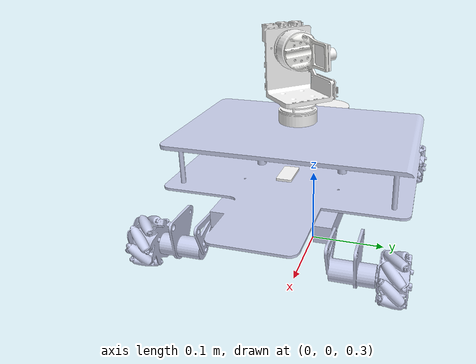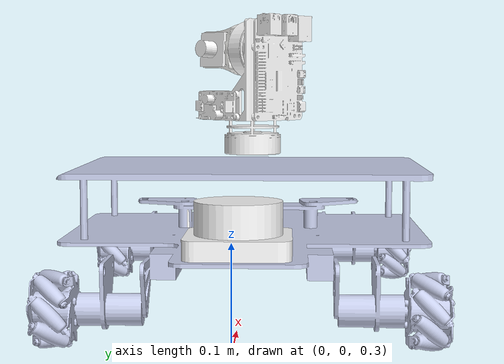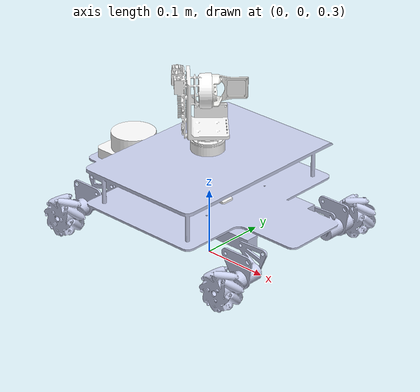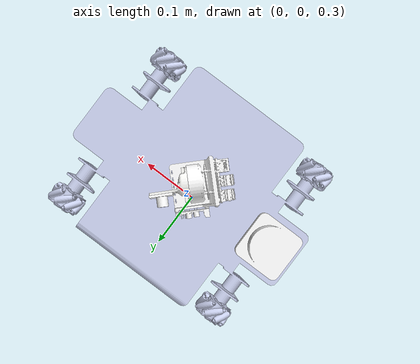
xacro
<?xml version="1.0" encoding="utf-8"?>
<robot
  name="robot2" xmlns:xacro="http://www.ros.org/wiki/xacro">
  <!-- base_footprint：机器人在地面的投影，z=0 -->
  <link name="base_footprint"/>

  <link
    name="base_link">
    <inertial>
      <origin
        xyz="0.0132167405277393 -0.0141195261419108 0.410880487047693"
        rpy="0 0 0" />
      <mass
        value="0.897679644388114" />
      <inertia
        ixx="0.00372853690958195"
        ixy="1.72105703339778E-08"
        ixz="2.42326574822141E-09"
        iyy="0.0043182244684323"
        iyz="5.80431563371861E-07"
        izz="0.00800413497461256" />
    </inertial>
    <visual>
      <origin
        xyz="0 0 0"
        rpy="0 0 0" />
      <geometry>
        <mesh
          filename="file:///home/whx/ros_sw2/src/robot2/meshes/base_link.STL" />
      </geometry>
      <material
        name="">
        <color
          rgba="0.792156862745098 0.819607843137255 0.933333333333333 1" />
      </material>
    </visual>
    <collision>
      <origin
        xyz="0 0 0"
        rpy="0 0 0" />
      <geometry>
        <mesh
          filename="file:///home/whx/ros_sw2/src/robot2/meshes/base_link.STL" />
      </geometry>
    </collision>
  </link>
  <link
    name="Wheel1_Link">
    <inertial>
      <origin
        xyz="-3.52495810318487E-15 5.05151476204446E-15 0.018499429759673"
        rpy="0 0 0" />
      <mass
        value="0.0419122672552559" />
      <inertia
        ixx="3.67888532155705E-06"
        ixy="-7.51827689923714E-21"
        ixz="-7.11157586205349E-22"
        iyy="3.67888532155703E-06"
        iyz="1.50115142513272E-22"
        izz="3.56689493889848E-06" />
    </inertial>
    <visual>
      <origin
        xyz="0 0 0"
        rpy="0 0 0" />
      <geometry>
        <mesh
          filename="file:///home/whx/ros_sw2/src/robot2/meshes/Wheel1_Link.STL" />
      </geometry>
      <material
        name="">
        <color
          rgba="0.792156862745098 0.819607843137255 0.933333333333333 1" />
      </material>
    </visual>
    <collision>
      <origin
        xyz="0 0 0"
        rpy="0 0 0" />
      <geometry>
        <mesh
          filename="file:///home/whx/ros_sw2/src/robot2/meshes/Wheel1_Link.STL" />
      </geometry>
    </collision>
  </link>
  <joint name="base_footprint_joint" type="fixed">
    <origin xyz="0 0 0.010880487047693" rpy="0 0 0"/>
    <parent link="base_footprint"/>
    <child link="base_link"/>
  </joint>

  <joint
    name="wheel_joint"
    type="continuous">
    <origin
      xyz="-0.138459353468576 -0.135012026118823 0.359075611894405"
      rpy="1.5707963267949 0 0" />
    <parent
      link="base_link" />
    <child
      link="Wheel1_Link" />
    <axis
      xyz="0 0 -1" />
  </joint>
  <link
    name="Wheel2_Link">
    <inertial>
      <origin
        xyz="-6.17214092082929E-06 -3.37571948735294E-05 0.0184842625340394"
        rpy="0 0 0" />
      <mass
        value="0.0418505141048152" />
      <inertia
        ixx="3.6785889142179E-06"
        ixy="3.58854608272818E-11"
        ixz="8.31121146724427E-11"
        iyy="3.67861691852432E-06"
        iyz="-5.6785369141978E-11"
        izz="3.56655805903672E-06" />
    </inertial>
    <visual>
      <origin
        xyz="0 0 0"
        rpy="0 0 0" />
      <geometry>
        <mesh
          filename="file:///home/whx/ros_sw2/src/robot2/meshes/Wheel2_Link.STL" />
      </geometry>
      <material
        name="">
        <color
          rgba="0.792156862745098 0.819607843137255 0.933333333333333 1" />
      </material>
    </visual>
    <collision>
      <origin
        xyz="0 0 0"
        rpy="0 0 0" />
      <geometry>
        <mesh
          filename="file:///home/whx/ros_sw2/src/robot2/meshes/Wheel2_Link.STL" />
      </geometry>
    </collision>
  </link>
  <joint
    name="wheel2_joint"
    type="continuous">
    <origin
      xyz="0.165312071284613 -0.135012026118823 0.359075611894404"
      rpy="1.5707963267949 0 0" />
    <parent
      link="base_link" />
    <child
      link="Wheel2_Link" />
    <axis
      xyz="0 0 -1" />
  </joint>
  <link
    name="Wheel3_Link">
    <inertial>
      <origin
        xyz="5.63438184997267E-15 5.55111512312578E-16 0.018500570146946"
        rpy="0 0 0" />
      <mass
        value="0.0419122672520916" />
      <inertia
        ixx="3.6788853190231E-06"
        ixy="-9.45516499373293E-21"
        ixz="-1.84560887375164E-21"
        iyy="3.6788853190231E-06"
        iyz="1.82844848648749E-21"
        izz="3.56689493673298E-06" />
    </inertial>
    <visual>
      <origin
        xyz="0 0 0"
        rpy="0 0 0" />
      <geometry>
        <mesh
          filename="file:///home/whx/ros_sw2/src/robot2/meshes/Wheel3_Link.STL" />
      </geometry>
      <material
        name="">
        <color
          rgba="0.792156862745098 0.819607843137255 0.933333333333333 1" />
      </material>
    </visual>
    <collision>
      <origin
        xyz="0 0 0"
        rpy="0 0 0" />
      <geometry>
        <mesh
          filename="file:///home/whx/ros_sw2/src/robot2/meshes/Wheel3_Link.STL" />
      </geometry>
    </collision>
  </link>
  <joint
    name="wheel3_joint"
    type="continuous">
    <origin
      xyz="0.165312071284612 0.10768225471223 0.359075611894405"
      rpy="-1.5707963267949 0 0" />
    <parent
      link="base_link" />
    <child
      link="Wheel3_Link" />
    <axis
      xyz="0 0 1" />
  </joint>
  <link
    name="Wheel4_Link">
    <inertial>
      <origin
        xyz="5.71764857681956E-15 4.9960036108132E-16 0.0185005701469439"
        rpy="0 0 0" />
      <mass
        value="0.0419122672520917" />
      <inertia
        ixx="3.67888531902311E-06"
        ixy="-9.38858567315966E-21"
        ixz="-6.71274322545044E-22"
        iyy="3.6788853190231E-06"
        iyz="9.99790655318579E-22"
        izz="3.56689493673298E-06" />
    </inertial>
    <visual>
      <origin
        xyz="0 0 0"
        rpy="0 0 0" />
      <geometry>
        <mesh
          filename="file:///home/whx/ros_sw2/src/robot2/meshes/Wheel4_Link.STL" />
      </geometry>
      <material
        name="">
        <color
          rgba="0.792156862745098 0.819607843137255 0.933333333333333 1" />
      </material>
    </visual>
    <collision>
      <origin
        xyz="0 0 0"
        rpy="0 0 0" />
      <geometry>
        <mesh
          filename="file:///home/whx/ros_sw2/src/robot2/meshes/Wheel4_Link.STL" />
      </geometry>
    </collision>
  </link>
  <joint
    name="wheel4_joint"
    type="continuous">
    <origin
      xyz="-0.138459353468577 0.107682254712233 0.359075611894405"
      rpy="-1.5707963267949 0 0" />
    <parent
      link="base_link" />
    <child
      link="Wheel4_Link" />
    <axis
      xyz="0 0 1" />
  </joint>
  <link
    name="E1_Link">
    <inertial>
      <origin
        xyz="-0.00841225933669741 -0.00679008877253193 0.0307409245395507"
        rpy="0 0 0" />
      <mass
        value="0.139375613250275" />
      <inertia
        ixx="7.15823848325997E-05"
        ixy="4.54176539885232E-06"
        ixz="7.91500459793168E-06"
        iyy="6.80386560086662E-05"
        iyz="9.31930922422236E-06"
        izz="5.08833232056672E-05" />
    </inertial>
    <visual>
      <origin
        xyz="0 0 0"
        rpy="0 0 0" />
      <geometry>
        <mesh
          filename="file:///home/whx/ros_sw2/src/robot2/meshes/E1_Link.STL" />
      </geometry>
      <material
        name="">
        <color
          rgba="1 1 1 1" />
      </material>
    </visual>
    <collision>
      <origin
        xyz="0 0 0"
        rpy="0 0 0" />
      <geometry>
        <mesh
          filename="file:///home/whx/ros_sw2/src/robot2/meshes/E1_Link.STL" />
      </geometry>
    </collision>
  </link>
  <joint
    name="E1_joint"
    type="fixed">
    <origin
      xyz="0.0134263589080169 -0.0180421531377461 0.4886"
      rpy="0 0 0" />
    <parent
      link="base_link" />
    <child
      link="E1_Link" />
    <axis
      xyz="0 0 -1" />
  </joint>
  <link
    name="E2_Link">
    <inertial>
      <origin
        xyz="0.030117911263382 0.00128519541670577 7.99053782302162E-05"
        rpy="0 0 0" />
      <mass
        value="0.00884120220950078" />
      <inertia
        ixx="2.35735580170689E-06"
        ixy="-7.15233559561298E-08"
        ixz="-4.34813534266343E-09"
        iyy="2.08142050717864E-06"
        iyz="4.68744356292E-08"
        izz="1.32377247337644E-06" />
    </inertial>
    <visual>
      <origin
        xyz="0 0 0"
        rpy="0 0 0" />
      <geometry>
        <mesh
          filename="file:///home/whx/ros_sw2/src/robot2/meshes/E2_Link.STL" />
      </geometry>
      <material
        name="">
        <color
          rgba="0.964705882352941 0.964705882352941 0.952941176470588 1" />
      </material>
    </visual>
    <collision>
      <origin
        xyz="0 0 0"
        rpy="0 0 0" />
      <geometry>
        <mesh
          filename="file:///home/whx/ros_sw2/src/robot2/meshes/E2_Link.STL" />
      </geometry>
    </collision>
  </link>
  <joint
    name="E2_joint"
    type="fixed">
    <origin
      xyz="-0.0116671243840653 -0.0116676744061118 0.0679998518154678"
      rpy="0 0 0.78539816339745" />
    <parent
      link="E1_Link" />
    <child
      link="E2_Link" />
    <axis
      xyz="1 0 0" />
  </joint>
  <link
    name="camera">
    <inertial>
      <origin
        xyz="-0.00505854242453742 6.93889390390723E-18 1.11022302462516E-16"
        rpy="0 0 0" />
      <mass
        value="0.00486326833770339" />
      <inertia
        ixx="4.62292472774214E-07"
        ixy="-2.58493941422821E-24"
        ixz="-4.81419116505862E-22"
        iyy="3.40501781846438E-07"
        iyz="3.32526606246317E-22"
        izz="3.40501781846438E-07" />
    </inertial>
    <visual>
      <origin
        xyz="0 0 0"
        rpy="0 0 0" />
      <geometry>
        <mesh
          filename="file:///home/whx/ros_sw2/src/robot2/meshes/camera.STL" />
      </geometry>
      <material
        name="">
        <color
          rgba="1 1 1 1" />
      </material>
    </visual>
    <collision>
      <origin
        xyz="0 0 0"
        rpy="0 0 0" />
      <geometry>
        <mesh
          filename="file:///home/whx/ros_sw2/src/robot2/meshes/camera.STL" />
      </geometry>
    </collision>
  </link>
  <joint
    name="camera_joint"
    type="fixed">
    <origin
      xyz="0.0579283046703796 0.00799467082773367 0.00033261724057132"
      rpy="-0.0613823921290019 0.0614983582742595 -1.57079632679482" />
    <parent
      link="E2_Link" />
    <child
      link="camera" />
    <axis
      xyz="0 0 0" />
  </joint>
  <link
    name="robot2_laser_link">
    <inertial>
      <origin
        xyz="0 -1.73472347597681E-18 0.0170480907130683"
        rpy="0 0 0" />
      <mass
        value="0.181234617293907" />
      <inertia
        ixx="9.75566164237748E-05"
        ixy="6.85008944770475E-22"
        ixz="-2.01079246858274E-21"
        iyy="9.75566164237748E-05"
        iyz="-3.15868720589364E-21"
        izz="0.000146375886879348" />
    </inertial>
    <visual>
      <origin
        xyz="0 0 0"
        rpy="0 0 0" />
      <geometry>
        <mesh
          filename="file:///home/whx/ros_sw2/src/robot2/meshes/laser.STL" />
      </geometry>
      <material
        name="">
        <color
          rgba="1 1 1 1" />
      </material>
    </visual>
    <collision>
      <origin
        xyz="0 0 0"
        rpy="0 0 0" />
      <geometry>
        <mesh
          filename="file:///home/whx/ros_sw2/src/robot2/meshes/laser.STL" />
      </geometry>
    </collision>
  </link>
  <joint
    name="robot2_laser_joint"
    type="fixed">
    <origin
      xyz="-0.139395183398184 -0.0123525645266681 0.4015"
      rpy="0 0 0" />
    <parent
      link="base_link" />
    <child
      link="robot2_laser_link" />
    <axis
      xyz="0 0 0" />
  </joint>
  <link
    name="robot2_imu_Link">
    <inertial>
      <origin
        xyz="0.0015 3.46944695195361E-18 0"
        rpy="0 0 0" />
      <mass
        value="0.00238969911184308" />
      <inertia
        ixx="3.95118653618801E-07"
        ixy="1.92841501372184E-24"
        ixz="8.89416831396428E-28"
        iyy="3.17852485682883E-07"
        iyz="1.76957895159966E-23"
        izz="8.08507166036824E-08" />
    </inertial>
    <visual>
      <origin
        xyz="0 0 0"
        rpy="0 0 0" />
      <geometry>
        <mesh
          filename="file:///home/whx/ros_sw2/src/robot2/meshes/imu_Link.STL" />
      </geometry>
      <material
        name="">
        <color
          rgba="1 1 1 1" />
      </material>
    </visual>
    <collision>
      <origin
        xyz="0 0 0"
        rpy="0 0 0" />
      <geometry>
        <mesh
          filename="file:///home/whx/ros_sw2/src/robot2/meshes/imu_Link.STL" />
      </geometry>
    </collision>
  </link>
  <joint
    name="robot2_imu_joint"
    type="fixed">
    <origin
      xyz="0.0391011571516298 -0.0244560093753921 0.4015"
      rpy="3.14159265358979 -1.5707963267949 0" />
    <parent
      link="base_link" />
    <child
      link="robot2_imu_Link" />
    <axis
      xyz="0 0 0" />
  </joint>

  <!-- ==================== 新增：ROS2控制与Gazebo插件（按ros2robot1标准） ==================== -->
  <xacro:macro name="fishbot_ros2_control">
    <ros2_control name="GazeboSystem" type="system">
      <hardware>
        <plugin>gazebo_ros2_control/GazeboSystem</plugin>
      </hardware>
      <joint name="wheel_joint">
        <command_interface name="velocity" />
        <state_interface name="position" />
        <state_interface name="velocity" />
      </joint>
      <joint name="wheel2_joint">
        <command_interface name="velocity" />
        <state_interface name="position" />
        <state_interface name="velocity" />
      </joint>
      <joint name="wheel3_joint">
        <command_interface name="velocity" />
        <state_interface name="position" />
        <state_interface name="velocity" />
      </joint>
      <joint name="wheel4_joint">
        <command_interface name="velocity" />
        <state_interface name="position" />
        <state_interface name="velocity" />
      </joint>
    </ros2_control>

    <gazebo>
      <plugin filename="libgazebo_ros2_control.so" name="gazebo_ros2_control">
        <robot_param>robot_description</robot_param>
        <robot_param_node>robot_state_publisher</robot_param_node>
        <parameters>$(find robot2)/config/ros2_controllers.yaml</parameters>
        <max_wheel_torque>20</max_wheel_torque>
        <max_wheel_acceleration>1.0</max_wheel_acceleration>
      </plugin>
    </gazebo>
  </xacro:macro>
  <xacro:fishbot_ros2_control />

  <!-- 轮子摩擦系数配置 -->
  <gazebo reference="Wheel1_Link">
    <mu1>0.8</mu1>
    <mu2>0.5</mu2>
    <kp>1e5</kp>
    <kd>1e3</kd>
    <material>Gazebo/Wheel</material>
  </gazebo>
  <gazebo reference="Wheel2_Link">
    <mu1>0.8</mu1>
    <mu2>0.5</mu2>
    <kp>1e5</kp>
    <kd>1e3</kd>
    <material>Gazebo/Wheel</material>
  </gazebo>
  <gazebo reference="Wheel3_Link">
    <mu1>0.8</mu1>
    <mu2>0.5</mu2>
    <kp>1e5</kp>
    <kd>1e3</kd>
    <material>Gazebo/Wheel</material>
  </gazebo>
  <gazebo reference="Wheel4_Link">
    <mu1>0.8</mu1>
    <mu2>0.5</mu2>
    <kp>1e5</kp>
    <kd>1e3</kd>
    <material>Gazebo/Wheel</material>
  </gazebo>

  <!-- 传感器插件（需确保 $(find robot2)/urdf/gazebo_sensor_plugin.xacro 存在） -->
  <xacro:include filename="$(find robot2)/urdf/gazebo_sensor_plugin.xacro" />
  <xacro:gazebo_sensor_plugin name="robot2" />
</robot>
